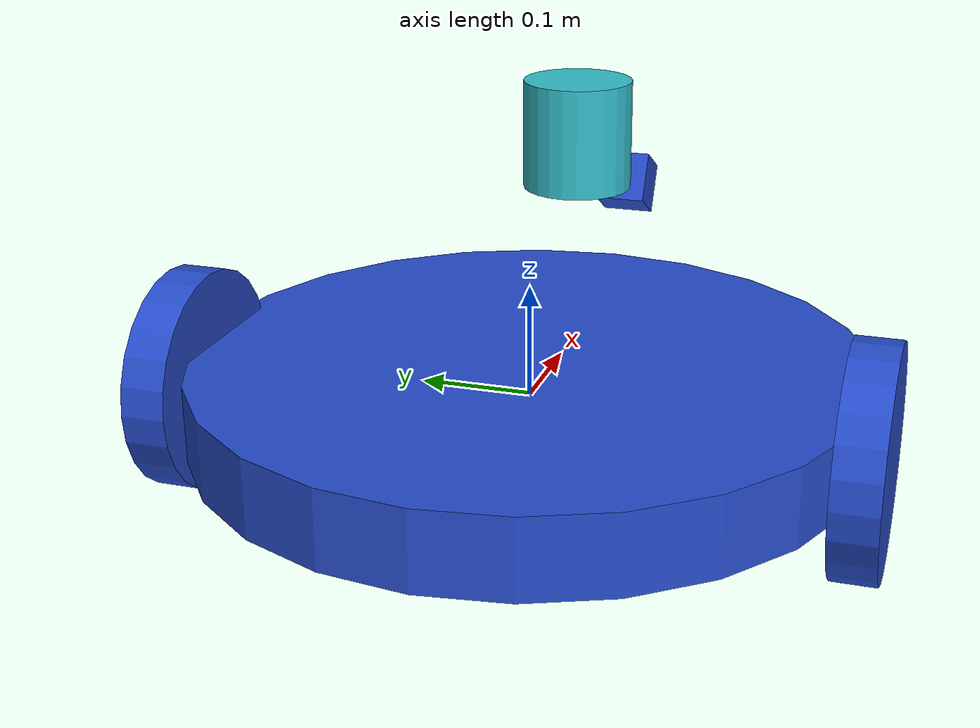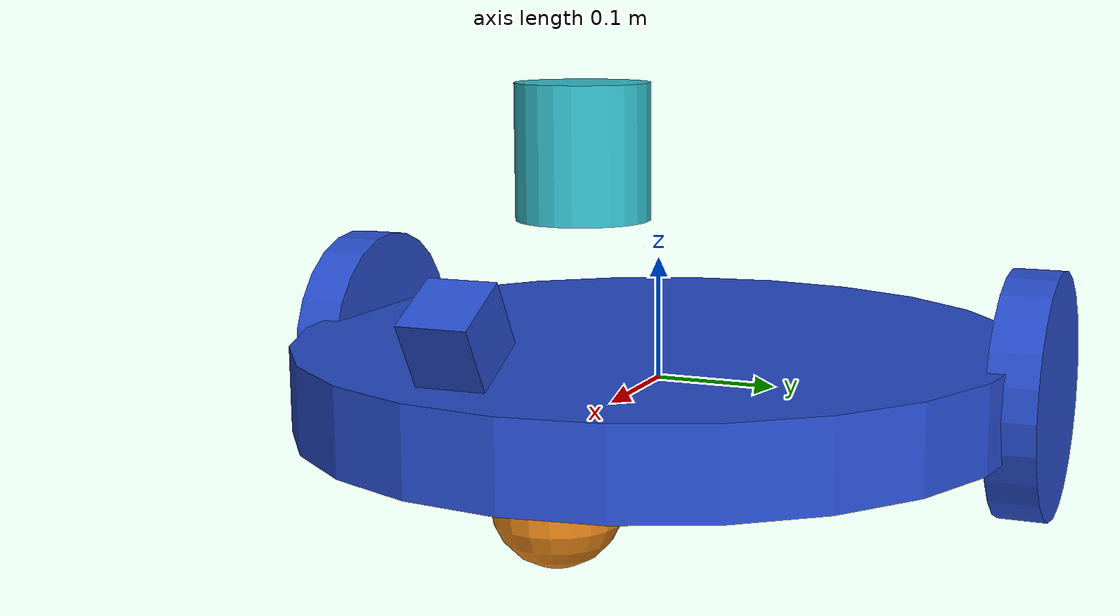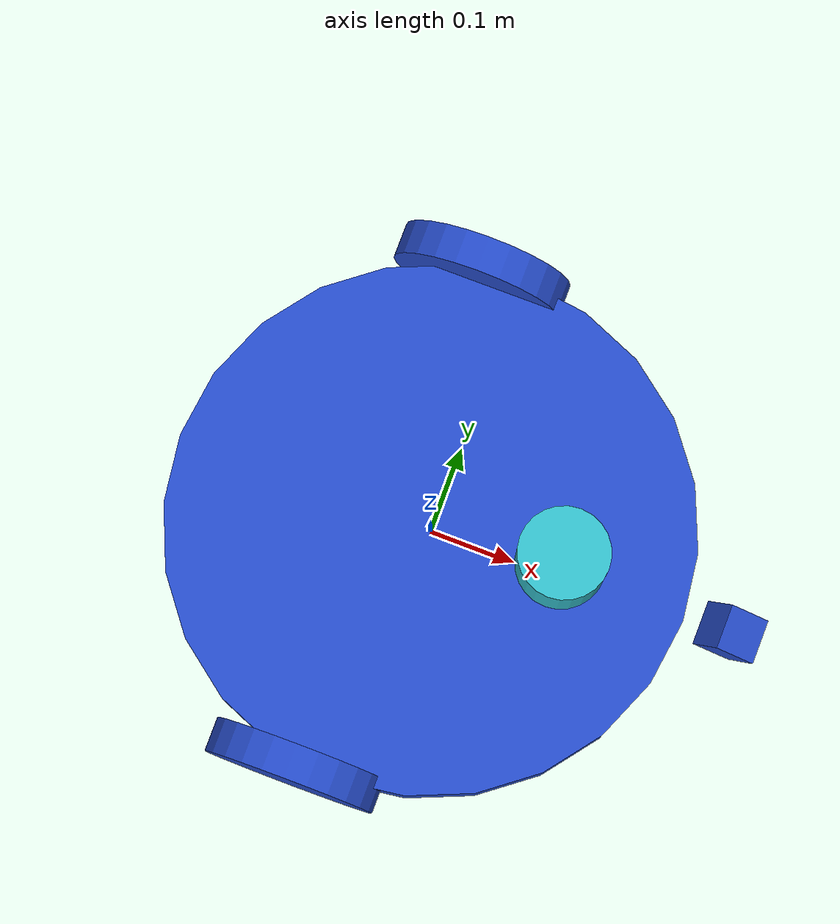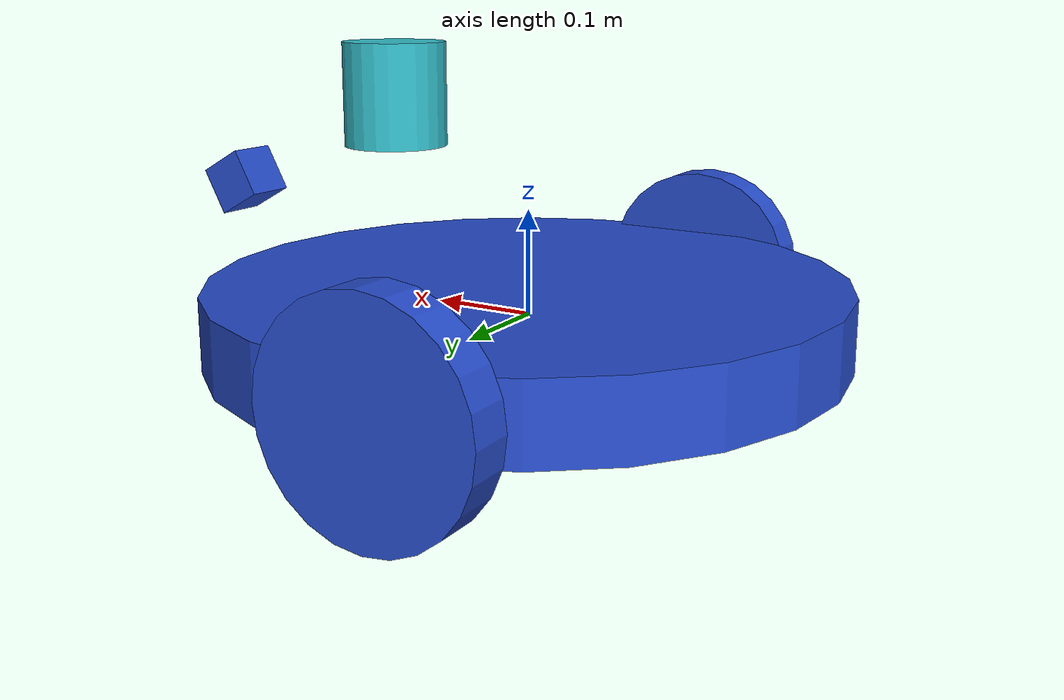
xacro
<?xml version="1.0" ?>
<robot name="m2wr" xmlns:xacro="https://www.ros.org/wiki/xacro" >   <!-- this second parameter is importent to make this file a valid xacro file -->

<!-- in rviz red - x  | green - y | blue -z  -->

<!-- while using odom tf do not forget to do   rosparam set use_sim_time true  as this gives all simulations the same time -->

<xacro:include filename="$(find m2wr_description)/urdf/material.xacro" />
<xacro:include filename="$(find m2wr_description)/urdf/gazebo.xacro" />
<xacro:include filename="$(find m2wr_description)/urdf/link_joint.xacro" />

  <link name="link_chassis">
    <!-- pose and inertial -->
    <pose>0 0 0.1 0 0 0</pose>

    <inertial>
      <mass value="2.0"/>
      <origin rpy="0 0 0" xyz="0 0 0.1"/>
      <inertia ixx="0.0395416666667" ixy="0" ixz="0" iyy="0.106208333333" iyz="0" izz="0.106208333333"/>
    </inertial>

    <collision name="collision_chassis">
      <geometry>
        <cylinder radius = "0.3" length= "0.07"/>
      </geometry>
    </collision>

    <visual>
      <origin rpy="0 0 0" xyz="0 0 0"/>
      <geometry>
        <cylinder radius = "0.3" length= "0.07"/>
      </geometry>
      <material name="blue"/>
    </visual>

    <!-- caster front -->
    <collision name = "caster_front_collision">
      <origin rpy=" 0 0 0" xyz="0.35 0 -0.05"/>
      <geometry>
        <sphere radius="0.05"/>
      </geometry>
      <surface>
        <friction>
          <ode>
            <mu>0</mu>
            <mu2>0</mu2>
            <slip1>1.0</slip1>
            <slip2>1.0</slip2>
          </ode>
        </friction>
      </surface>
    </collision>
    <visual name="caster_front_visual">
      <origin rpy=" 0 0 0" xyz="0.2 0 -0.05"/>
      <geometry>
        <sphere radius="0.05"/>
      </geometry>
    </visual>
    </link>

  <!-- Create sensor link  -->
  <xacro:sensor_link />
  <!-- Create sensor joint -->
  <xacro:sensor_joint />

  <!-- Create wheel right -->
  <xacro:link_wheel name="link_right_wheel" />
  <!-- Create joint right -->
  <xacro:joint_wheel name="joint_right_wheel" param_xyz="-0.05 -0.3 0" child="link_right_wheel"  />
  <!-- Create wheel left -->
  <xacro:link_wheel name="link_left_wheel" />
  <!-- Create joint left -->
  <xacro:joint_wheel name="joint_left_wheel" param_xyz="-0.05 0.3 0" child="link_left_wheel"  />

  <link name="camera_link">
  <visual>
    <geometry>
      <box size="0.05 0.05 0.05"/>
    </geometry>
    <material name="blue"/>
  </visual>
  <inertial>
    <mass value="0.1"/>
    <origin xyz="0 0 0" rpy="0 0 0"/>
    <inertia ixx="1e-6" ixy="0" ixz="0" iyy="1e-6" iyz="0" izz="1e-6" />
  </inertial>
</link>

<joint name="camera_joint" type="fixed">
  <origin xyz="0.35 0 0.1" rpy="0 0.5 0"/> <parent link="link_chassis"/>
  <child link="camera_link"/>
</joint>

</robot>

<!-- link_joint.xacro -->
<robot name="m2wr" xmlns:xacro="https://www.ros.org/wiki/xacro" >   <!-- this second parameter is importent to make this file a valid xacro file -->

    <xacro:macro name="link_wheel" params="name">
    <link name="${name}">
            <inertial>
            <mass value="1.0"/>
            <origin rpy="0 1.5707 1.5707" xyz="0 0 0"/>
           <inertia ixx="0.00052666666" ixy="0" ixz="0" iyy="0.00052666666" iyz="0" izz="0.001"/>
            </inertial>

            <collision name="${name}_collision">
            <origin rpy="0 1.5707 1.5707" xyz="0 0 0" />
            <geometry>
                <cylinder length="0.04" radius="0.1"/>
            </geometry>
            </collision>

            <visual name="${name}_visual">
            <origin rpy="0 1.5707 1.5707" xyz="0 0 0"/>
            <geometry>
                <cylinder length="0.04" radius="0.1"/>
            </geometry>
            </visual>
        </link>
    </xacro:macro>

    <xacro:macro name="joint_wheel" params="name param_xyz child">
        <joint name="${name}" type="continuous">
            <origin rpy="0 0 0" xyz="${param_xyz}"/>        <!-- this gives orientation -->
            <child link="${child}" />
            <parent link="link_chassis"/>
            <axis rpy="0 0 0" xyz="0 1 0"/>    <!-- this says rotate about y axis -->
            <limit effort="10000" velocity="1000"/>
            <joint_properties damping="0.0" friction="0.0" />
        </joint>

    </xacro:macro>

    <xacro:macro name="sensor_link">
        <link name = "sensor_link">
            <inertial>
                <origin xyz="0 0 0" rpy="0 0 0"/>
                <mass value="0.2"/>
                <inertia ixx="0.02" ixy="0" ixz="0" iyy="0.02" iyz="0" izz="0.02" />
            </inertial>

            <visual>
                <origin xyz="0 0 0" rpy="0 0 0" />
                <geometry>
                <cylinder radius="0.05" length="0.1" />
                </geometry>
                <material name="Cyan"/>
            </visual>

            <collision>
                <origin xyz="0 0 0" rpy="0 0 0"/>
                <geometry>
                <cylinder radius="0.05" length="0.1" />
                </geometry>
            </collision>
        </link>
    </xacro:macro>

    <xacro:macro name="sensor_joint">
        <joint name="sensor_joint" type="fixed">
            <origin xyz="0.15 0 0.20" rpy="0 0 0"/>
            <parent link="link_chassis"/>
            <child link="sensor_link"/>
        </joint>
    </xacro:macro>

</robot>
